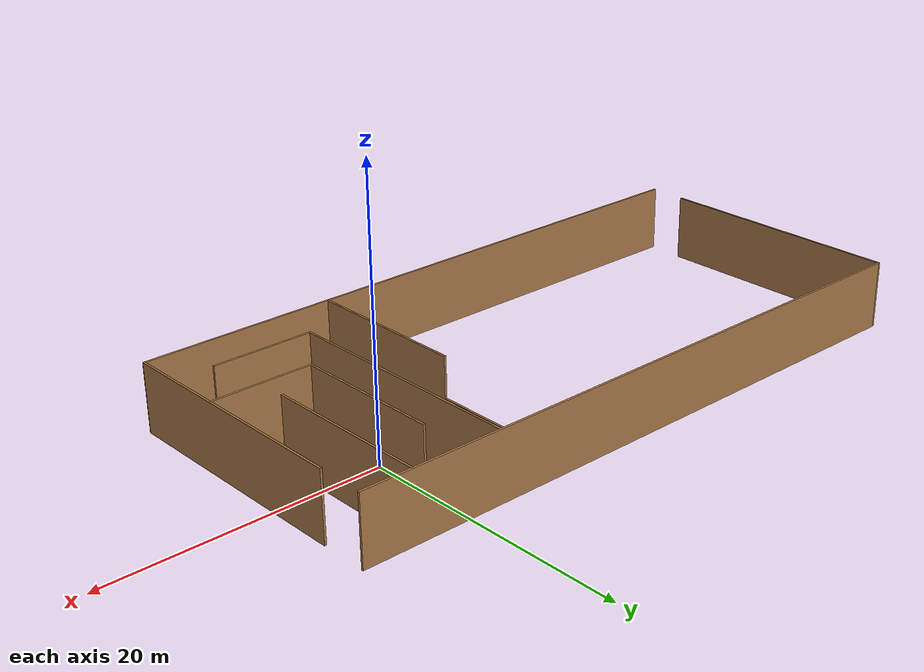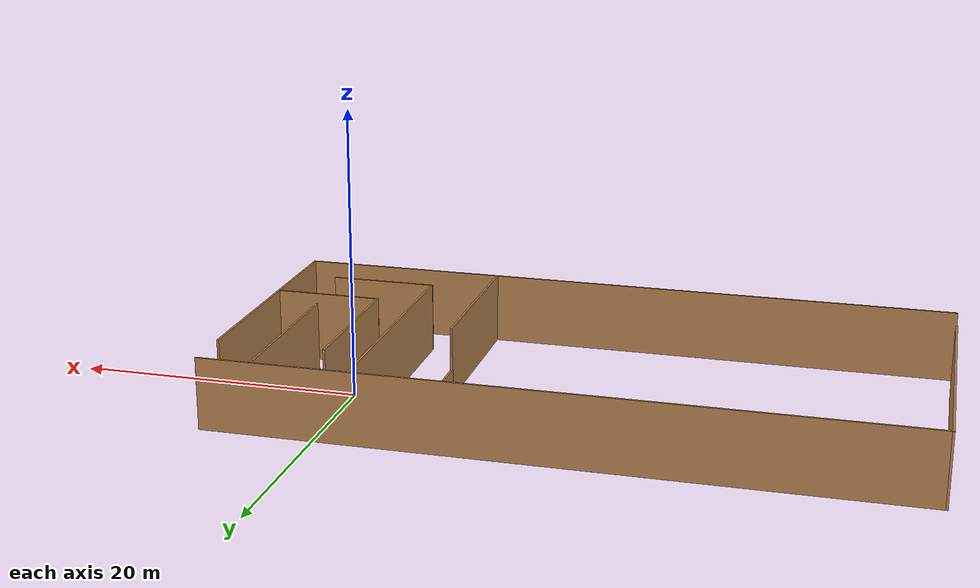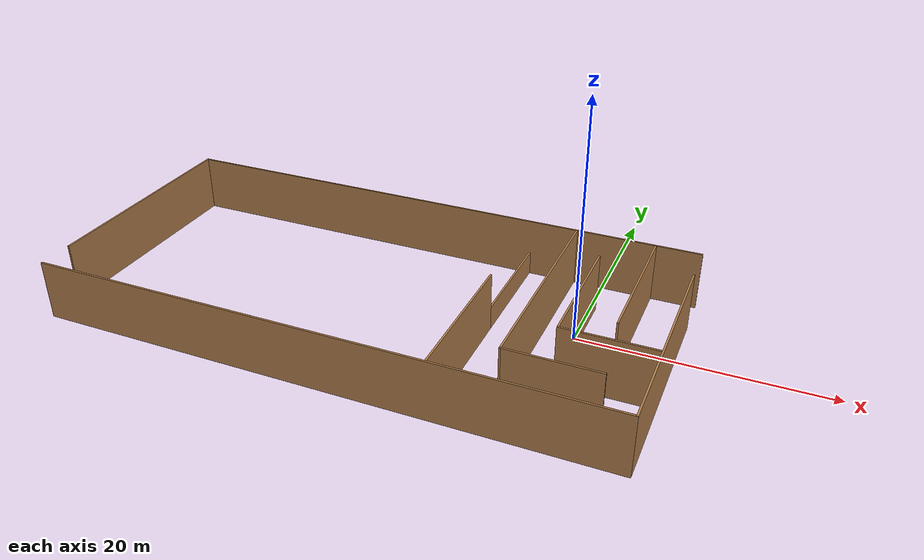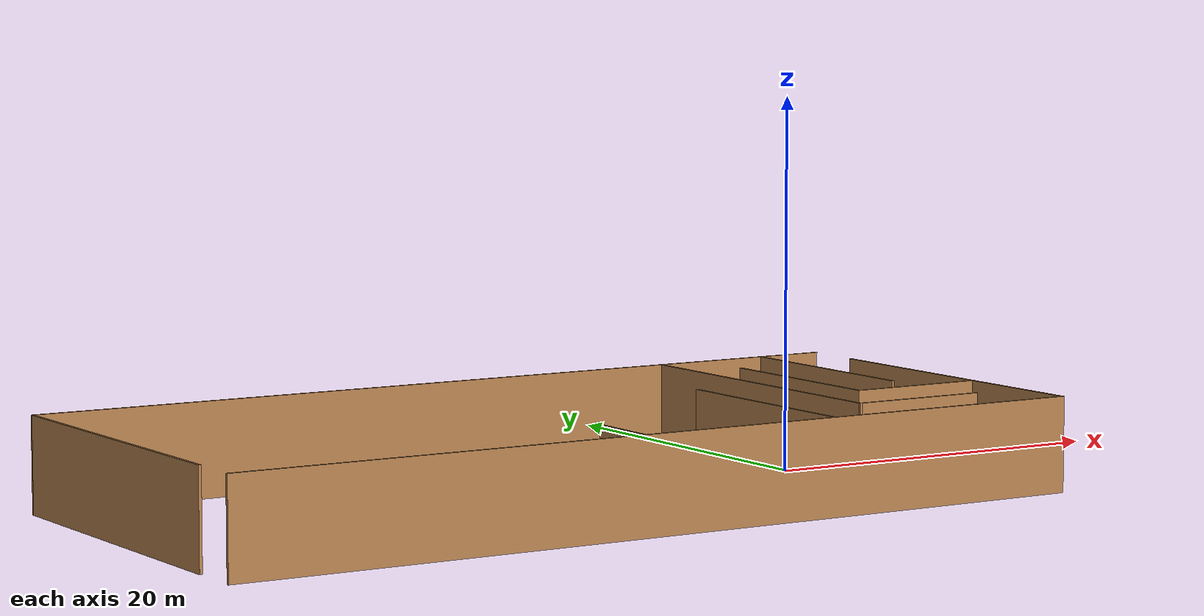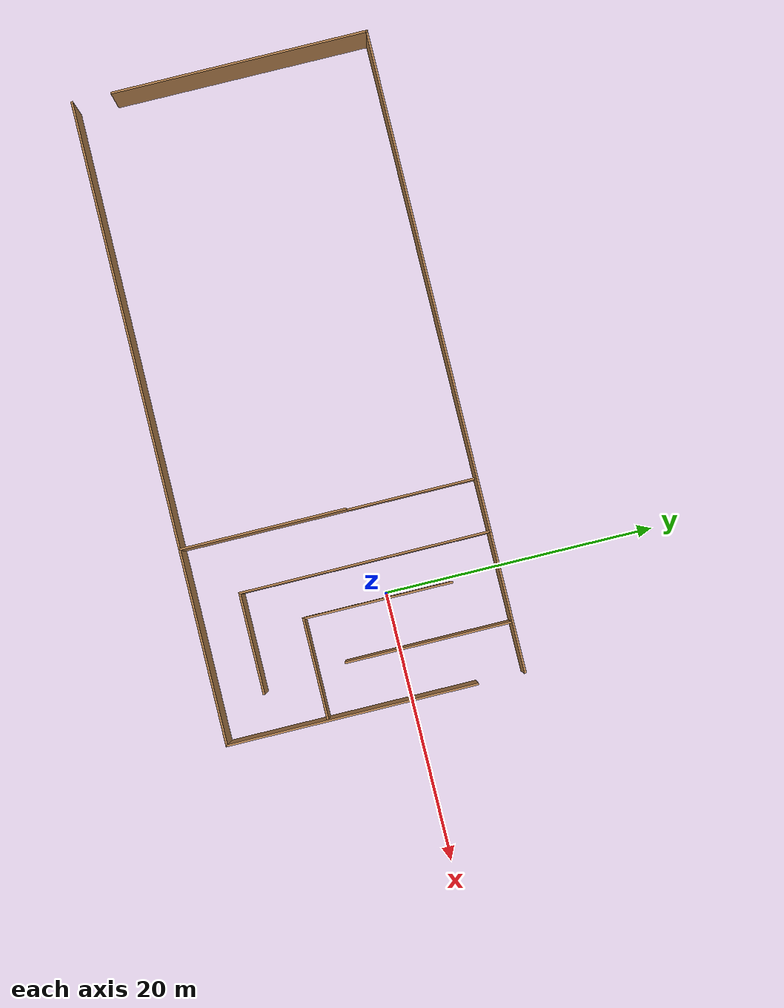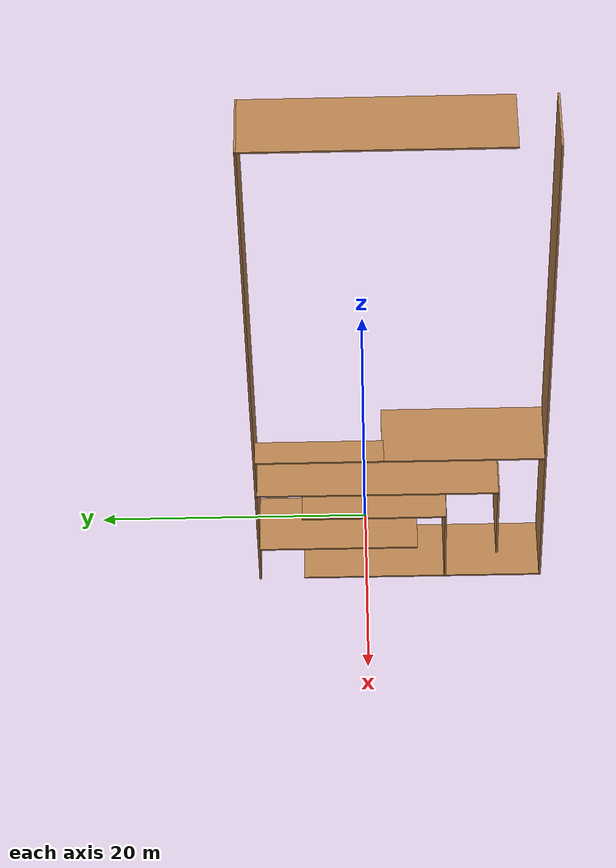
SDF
<?xml version='1.0'?>
<sdf version='1.7'>
  <model name='basse_flower'>
    <pose>-15.87 -2.61568 0 0 -0 0</pose>
    <link name='Wall_10'>
      <collision name='Wall_10_Collision'>
        <geometry>
          <box>
            <size>47.5 0.15 5</size>
          </box>
        </geometry>
        <pose>0 0 2.5 0 -0 0</pose>
      </collision>
      <visual name='Wall_10_Visual'>
        <pose>0 0 2.5 0 -0 0</pose>
        <geometry>
          <box>
            <size>47.5 0.15 5</size>
          </box>
        </geometry>
        <material>
          <script>
            <uri>file://media/materials/scripts/gazebo.material</uri>
            <name>Gazebo/Wood</name>
          </script>
          <ambient>1 1 1 1</ambient>
        </material>
        <meta>
          <layer>0</layer>
        </meta>
      </visual>
      <pose>-0 -10.9097 0 0 -0 0</pose>
    </link>
    <link name='Wall_13'>
      <collision name='Wall_13_Collision'>
        <geometry>
          <box>
            <size>18.4388 0.15 5</size>
          </box>
        </geometry>
        <pose>0 0 2.5 0 -0 0</pose>
      </collision>
      <visual name='Wall_13_Visual'>
        <pose>0 0 2.5 0 -0 0</pose>
        <geometry>
          <box>
            <size>18.4388 0.15 5</size>
          </box>
        </geometry>
        <material>
          <script>
            <uri>file://media/materials/scripts/gazebo.material</uri>
            <name>Gazebo/Wood</name>
          </script>
          <ambient>1 1 1 1</ambient>
        </material>
        <meta>
          <layer>0</layer>
        </meta>
      </visual>
      <pose>23.675 -1.73473 0 0 -0 1.5708</pose>
    </link>
    <link name='Wall_15'>
      <collision name='Wall_15_Collision'>
        <geometry>
          <box>
            <size>12.25 0.15 5</size>
          </box>
        </geometry>
        <pose>0 0 2.5 0 -0 0</pose>
      </collision>
      <visual name='Wall_15_Visual'>
        <pose>0 0 2.5 0 -0 0</pose>
        <geometry>
          <box>
            <size>12.25 0.15 5</size>
          </box>
        </geometry>
        <material>
          <script>
            <uri>file://media/materials/scripts/gazebo.material</uri>
            <name>Gazebo/Wood</name>
          </script>
          <ambient>1 1 1 1</ambient>
        </material>
        <meta>
          <layer>0</layer>
        </meta>
      </visual>
      <pose>19.978 4.75368 0 0 -0 -1.5708</pose>
    </link>
    <link name='Wall_17'>
      <collision name='Wall_17_Collision'>
        <geometry>
          <box>
            <size>7.5 0.15 5</size>
          </box>
        </geometry>
        <pose>0 0 2.5 0 -0 0</pose>
      </collision>
      <visual name='Wall_17_Visual'>
        <pose>0 0 2.5 0 -0 0</pose>
        <geometry>
          <box>
            <size>7.5 0.15 5</size>
          </box>
        </geometry>
        <material>
          <script>
            <uri>file://media/materials/scripts/gazebo.material</uri>
            <name>Gazebo/Wood</name>
          </script>
          <ambient>1 1 1 1</ambient>
        </material>
        <meta>
          <layer>0</layer>
        </meta>
      </visual>
      <pose>19.902 -3.50732 0 0 -0 0</pose>
    </link>
    <link name='Wall_19'>
      <collision name='Wall_19_Collision'>
        <geometry>
          <box>
            <size>11 0.15 5</size>
          </box>
        </geometry>
        <pose>0 0 2.5 0 -0 0</pose>
      </collision>
      <visual name='Wall_19_Visual'>
        <pose>0 0 2.5 0 -0 0</pose>
        <geometry>
          <box>
            <size>11 0.15 5</size>
          </box>
        </geometry>
        <material>
          <script>
            <uri>file://media/materials/scripts/gazebo.material</uri>
            <name>Gazebo/Wood</name>
          </script>
          <ambient>1 1 1 1</ambient>
        </material>
        <meta>
          <layer>0</layer>
        </meta>
      </visual>
      <pose>16.227 1.94668 0 0 -0 -1.5708</pose>
    </link>
    <link name='Wall_21'>
      <collision name='Wall_21_Collision'>
        <geometry>
          <box>
            <size>18.4695 0.15 5</size>
          </box>
        </geometry>
        <pose>0 0 2.5 0 -0 0</pose>
      </collision>
      <visual name='Wall_21_Visual'>
        <pose>0 0 2.5 0 -0 0</pose>
        <geometry>
          <box>
            <size>18.4695 0.15 5</size>
          </box>
        </geometry>
        <material>
          <script>
            <uri>file://media/materials/scripts/gazebo.material</uri>
            <name>Gazebo/Wood</name>
          </script>
          <ambient>1 1 1 1</ambient>
        </material>
        <meta>
          <layer>0</layer>
        </meta>
      </visual>
      <pose>13.3695 1.67018 0 0 -0 -1.5691</pose>
    </link>
    <link name='Wall_22'>
      <collision name='Wall_22_Collision'>
        <geometry>
          <box>
            <size>7.5 0.15 5</size>
          </box>
        </geometry>
        <pose>0 0 2.5 0 -0 0</pose>
      </collision>
      <visual name='Wall_22_Visual'>
        <pose>0 0 2.5 0 -0 0</pose>
        <geometry>
          <box>
            <size>7.5 0.15 5</size>
          </box>
        </geometry>
        <material>
          <script>
            <uri>file://media/materials/scripts/gazebo.material</uri>
            <name>Gazebo/Wood</name>
          </script>
          <ambient>1 1 1 1</ambient>
        </material>
        <meta>
          <layer>0</layer>
        </meta>
      </visual>
      <pose>17.06 -7.48932 0 0 -0 0</pose>
    </link>
    <link name='Wall_24'>
      <collision name='Wall_24_Collision'>
        <geometry>
          <box>
            <size>12.25 0.15 5</size>
          </box>
        </geometry>
        <pose>0 0 2.5 0 -0 0</pose>
      </collision>
      <visual name='Wall_24_Visual'>
        <pose>0 0 2.5 0 -0 0</pose>
        <geometry>
          <box>
            <size>12.25 0.15 5</size>
          </box>
        </geometry>
        <material>
          <script>
            <uri>file://media/materials/scripts/gazebo.material</uri>
            <name>Gazebo/Wood</name>
          </script>
          <ambient>1 1 1 1</ambient>
        </material>
        <meta>
          <layer>0</layer>
        </meta>
      </visual>
      <pose>9.345 -4.79932 0 0 -0 -1.5708</pose>
    </link>
    <link name='Wall_27'>
      <collision name='Wall_27_Collision'>
        <geometry>
          <box>
            <size>9.75 0.15 2</size>
          </box>
        </geometry>
        <pose>0 0 1 0 -0 0</pose>
      </collision>
      <visual name='Wall_27_Visual'>
        <pose>0 0 1 0 -0 0</pose>
        <geometry>
          <box>
            <size>9.75 0.15 2</size>
          </box>
        </geometry>
        <material>
          <script>
            <uri>file://media/materials/scripts/gazebo.material</uri>
            <name>Gazebo/Wood</name>
          </script>
          <ambient>1 1 1 1</ambient>
        </material>
        <meta>
          <layer>0</layer>
        </meta>
      </visual>
      <pose>9.345 6.05068 0 0 -0 1.5708</pose>
    </link>
    <link name='Wall_33'>
      <collision name='Wall_33_Collision'>
        <geometry>
          <box>
            <size>19 0.15 5</size>
          </box>
        </geometry>
        <pose>0 0 2.5 0 -0 0</pose>
      </collision>
      <visual name='Wall_33_Visual'>
        <pose>0 0 2.5 0 -0 0</pose>
        <geometry>
          <box>
            <size>19 0.15 5</size>
          </box>
        </geometry>
        <material>
          <script>
            <uri>file://media/materials/scripts/gazebo.material</uri>
            <name>Gazebo/Wood</name>
          </script>
          <ambient>1 1 1 1</ambient>
        </material>
        <meta>
          <layer>0</layer>
        </meta>
      </visual>
      <pose>-23.675 1.45868 0 0 -0 -1.5708</pose>
    </link>
    <link name='Wall_8'>
      <collision name='Wall_8_Collision'>
        <geometry>
          <box>
            <size>47.5 0.15 5</size>
          </box>
        </geometry>
        <pose>0 0 2.5 0 -0 0</pose>
      </collision>
      <visual name='Wall_8_Visual'>
        <pose>0 0 2.5 0 -0 0</pose>
        <geometry>
          <box>
            <size>47.5 0.15 5</size>
          </box>
        </geometry>
        <material>
          <script>
            <uri>file://media/materials/scripts/gazebo.material</uri>
            <name>Gazebo/Wood</name>
          </script>
          <ambient>1 1 1 1</ambient>
        </material>
        <meta>
          <layer>0</layer>
        </meta>
      </visual>
      <pose>-0 10.8967 0 0 -0 -3.14104</pose>
    </link>
    <static>1</static>
  </model>
</sdf>
